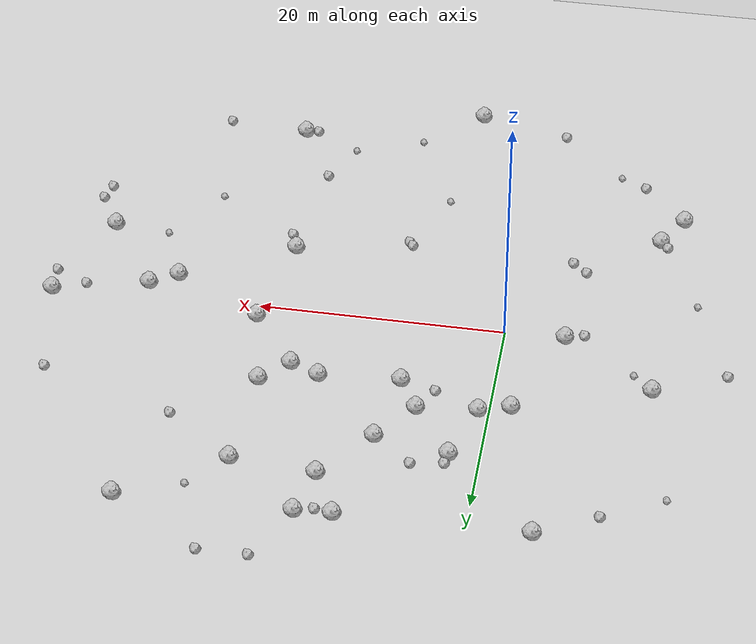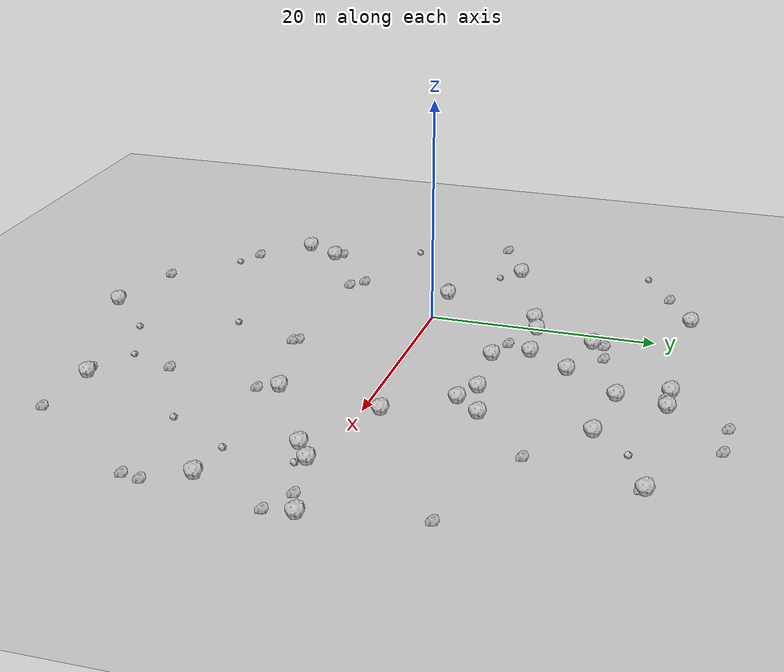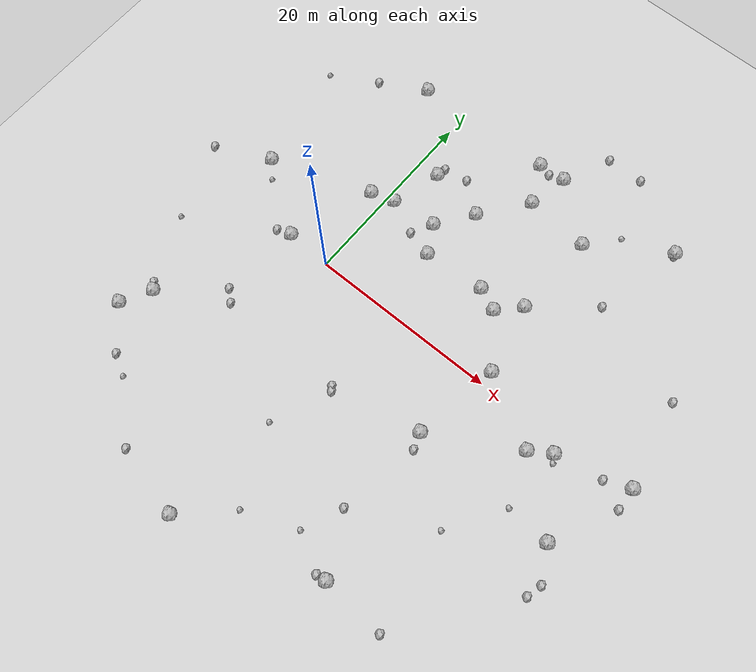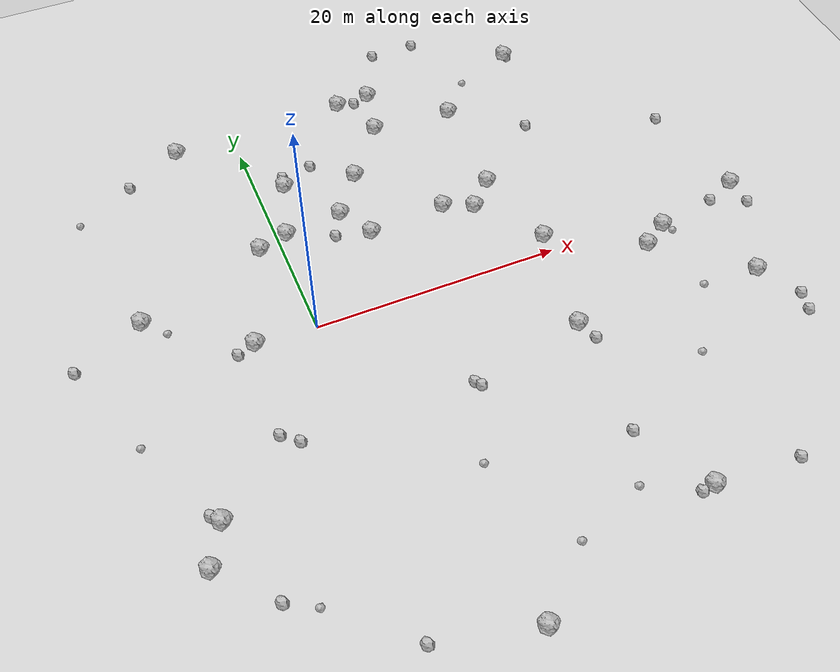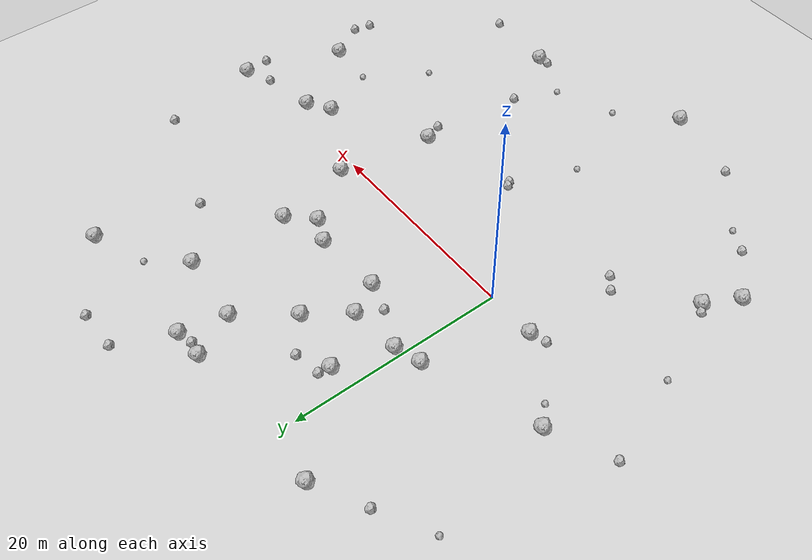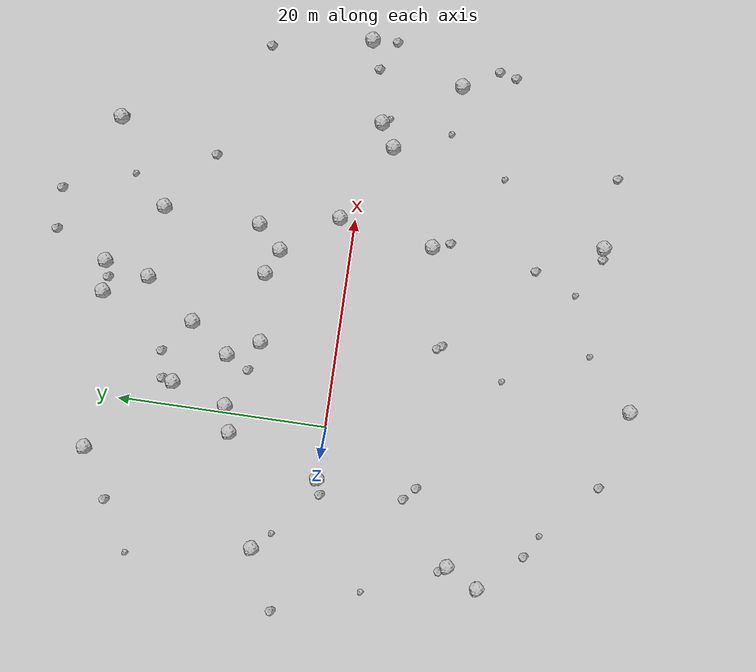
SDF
<sdf version="1.6">
 <world name="default">
  <include><uri>model://custom_ground</uri></include>
  <include><uri>model://sun</uri></include>
  <model name="rock1_0_0">
   <include><uri>model://rock1</uri><pose>18.752457497050067 18.109081399433165 0.5 0 0 0</pose></include>
  </model>
  <model name="rock1_0_1">
   <include><uri>model://rock1</uri><pose>5.660684782589623 10.244629294801733 0.5 0 0 0</pose></include>
  </model>
  <model name="rock1_0_2">
   <include><uri>model://rock1</uri><pose>27.346064810536994 -2.580714548875399 0.5 0 0 0</pose></include>
  </model>
  <model name="rock1_0_3">
   <include><uri>model://rock1</uri><pose>2.3995338080641773 14.98769402513446 0.5 0 0 0</pose></include>
  </model>
  <model name="rock1_0_4">
   <include><uri>model://rock1</uri><pose>12.884090526138614 22.919203178896517 0.5 0 0 0</pose></include>
  </model>
  <model name="rock1_0_5">
   <include><uri>model://rock1</uri><pose>13.81106825147453 7.762618812759619 0.5 0 0 0</pose></include>
  </model>
  <model name="rock1_0_6">
   <include><uri>model://rock1</uri><pose>-11.330809202531917 -13.27816265428374 0.5 0 0 0</pose></include>
  </model>
  <model name="rock1_0_7">
   <include><uri>model://rock1</uri><pose>9.968854779922502 22.771228361815666 0.5 0 0 0</pose></include>
  </model>
  <model name="rock1_0_8">
   <include><uri>model://rock1</uri><pose>34.00520805926403 -8.24698035894636 0.5 0 0 0</pose></include>
  </model>
  <model name="rock1_0_9">
   <include><uri>model://rock1</uri><pose>-4.808277266897855 0.12263634173859472 0.5 0 0 0</pose></include>
  </model>
  <model name="rock1_0_10">
   <include><uri>model://rock1</uri><pose>0.8573502836081275 9.760169233936807 0.5 0 0 0</pose></include>
  </model>
  <model name="rock1_0_11">
   <include><uri>model://rock1</uri><pose>29.517864844027166 -1.1846229876156897 0.5 0 0 0</pose></include>
  </model>
  <model name="rock1_0_12">
   <include><uri>model://rock1</uri><pose>26.597099732939967 23.33574086659278 0.5 0 0 0</pose></include>
  </model>
  <model name="rock1_0_13">
   <include><uri>model://rock1</uri><pose>7.295338230299226 7.289260338678858 0.5 0 0 0</pose></include>
  </model>
  <model name="rock1_0_14">
   <include><uri>model://rock1</uri><pose>-4.913092855298233 22.404779569685495 0.5 0 0 0</pose></include>
  </model>
  <model name="rock1_0_15">
   <include><uri>model://rock1</uri><pose>5.608404033991356 -28.363584563233513 0.5 0 0 0</pose></include>
  </model>
  <model name="rock1_0_16">
   <include><uri>model://rock1</uri><pose>8.319342677354072 13.935034523301056 0.5 0 0 0</pose></include>
  </model>
  <model name="rock1_0_17">
   <include><uri>model://rock1</uri><pose>20.686091982725728 -23.703162137072084 0.5 0 0 0</pose></include>
  </model>
  <model name="rock1_0_18">
   <include><uri>model://rock1</uri><pose>-12.214886643660236 5.344971832599178 0.5 0 0 0</pose></include>
  </model>
  <model name="rock1_0_19">
   <include><uri>model://rock1</uri><pose>16.20149260654884 6.696816177758812 0.5 0 0 0</pose></include>
  </model>
  <model name="rock1_0_20">
   <include><uri>model://rock1</uri><pose>18.49349003040458 -7.594753827377943 0.5 0 0 0</pose></include>
  </model>
  <model name="rock1_0_21">
   <include><uri>model://rock1</uri><pose>-13.02279681591087 -16.37380190348147 0.5 0 0 0</pose></include>
  </model>
  <model name="rock1_0_22">
   <include><uri>model://rock1</uri><pose>11.952118667838732 18.674037649331837 0.5 0 0 0</pose></include>
  </model>
  <model name="rock1_0_23">
   <include><uri>model://rock1</uri><pose>-1.6127313268092465 9.017278482259812 0.5 0 0 0</pose></include>
  </model>
  <model name="rock1_0_24">
   <include><uri>model://rock1</uri><pose>18.36680902269176 8.936638793772659 0.5 0 0 0</pose></include>
  </model>
  <model name="rock1_0_25">
   <include><uri>model://rock1</uri><pose>20.012152720916696 1.4763184421978082 0.5 0 0 0</pose></include>
  </model>
  <model name="rock1_0_26">
   <include><uri>model://rock1</uri><pose>37.164475944113995 0.8007525209864177 0.5 0 0 0</pose></include>
  </model>
  <model name="rock2_0_0">
   <include><uri>model://rock2</uri><pose>27.361978751840724 -24.13830649912704 0.3 0 0 0</pose></include>
  </model>
  <model name="rock2_0_1">
   <include><uri>model://rock2</uri><pose>-9.669564794837363 19.881833282372163 0.3 0 0 0</pose></include>
  </model>
  <model name="rock2_0_2">
   <include><uri>model://rock2</uri><pose>-9.464914220876818 -20.37741408829853 0.3 0 0 0</pose></include>
  </model>
  <model name="rock2_0_3">
   <include><uri>model://rock2</uri><pose>37.288879895963696 -1.589025571869719 0.3 0 0 0</pose></include>
  </model>
  <model name="rock2_0_4">
   <include><uri>model://rock2</uri><pose>-11.963257210416185 -12.594708360741276 0.3 0 0 0</pose></include>
  </model>
  <model name="rock2_0_5">
   <include><uri>model://rock2</uri><pose>-6.347653816981007 -0.3557144465479496 0.3 0 0 0</pose></include>
  </model>
  <model name="rock2_0_6">
   <include><uri>model://rock2</uri><pose>5.117076111496392 16.478688077986682 0.3 0 0 0</pose></include>
  </model>
  <model name="rock2_0_7">
   <include><uri>model://rock2</uri><pose>35.85498623393944 -11.619160606830807 0.3 0 0 0</pose></include>
  </model>
  <model name="rock2_0_8">
   <include><uri>model://rock2</uri><pose>34.52118239784182 -0.2530981746712655 0.3 0 0 0</pose></include>
  </model>
  <model name="rock2_0_9">
   <include><uri>model://rock2</uri><pose>8.969558555489453 -9.444920239821823 0.3 0 0 0</pose></include>
  </model>
  <model name="rock2_0_10">
   <include><uri>model://rock2</uri><pose>11.35086895625988 22.498695985281152 0.3 0 0 0</pose></include>
  </model>
  <model name="rock2_0_11">
   <include><uri>model://rock2</uri><pose>26.67539662545274 23.085591285811653 0.3 0 0 0</pose></include>
  </model>
  <model name="rock2_0_12">
   <include><uri>model://rock2</uri><pose>4.430867134289674 8.087061134515672 0.3 0 0 0</pose></include>
  </model>
  <model name="rock2_0_13">
   <include><uri>model://rock2</uri><pose>19.140681322352982 28.015542194080126 0.3 0 0 0</pose></include>
  </model>
  <model name="rock2_0_14">
   <include><uri>model://rock2</uri><pose>9.289516634810745 -9.872008037392078 0.3 0 0 0</pose></include>
  </model>
  <model name="rock2_0_15">
   <include><uri>model://rock2</uri><pose>17.590376584430466 -17.663156616335336 0.3 0 0 0</pose></include>
  </model>
  <model name="rock2_0_16">
   <include><uri>model://rock2</uri><pose>35.30416883056362 10.18421262710143 0.3 0 0 0</pose></include>
  </model>
  <model name="rock2_0_17">
   <include><uri>model://rock2</uri><pose>-17.965440066148158 2.72283823909261 0.3 0 0 0</pose></include>
  </model>
  <model name="rock2_0_18">
   <include><uri>model://rock2</uri><pose>19.583490845653095 -23.833705341714627 0.3 0 0 0</pose></include>
  </model>
  <model name="rock2_0_19">
   <include><uri>model://rock2</uri><pose>-4.467095472777556 -9.342167957844183 0.3 0 0 0</pose></include>
  </model>
  <model name="rock2_0_20">
   <include><uri>model://rock2</uri><pose>35.47211992447188 -13.239131136765529 0.3 0 0 0</pose></include>
  </model>
  <model name="rock2_0_21">
   <include><uri>model://rock2</uri><pose>15.21829623558105 27.972923388095552 0.3 0 0 0</pose></include>
  </model>
  <model name="rock2_0_22">
   <include><uri>model://rock2</uri><pose>24.301527148861368 13.916257540501938 0.3 0 0 0</pose></include>
  </model>
  <model name="rock2_0_23">
   <include><uri>model://rock2</uri><pose>19.061035414515793 -9.282955280752418 0.3 0 0 0</pose></include>
  </model>
  <model name="rock2_0_24">
   <include><uri>model://rock2</uri><pose>-1.9602860611707413 -26.53083071623595 0.3 0 0 0</pose></include>
  </model>
  <model name="rock2_0_25">
   <include><uri>model://rock2</uri><pose>2.548647129743806 16.077381119668402 0.3 0 0 0</pose></include>
  </model>
  <model name="rock2_0_26">
   <include><uri>model://rock2</uri><pose>-5.664273623775571 -8.268468224304865 0.3 0 0 0</pose></include>
  </model>
  <model name="rock3_0_0">
   <include><uri>model://rock3</uri><pose>-15.023169385542207 -5.538639418323978 0.2 0 0 0</pose></include>
  </model>
  <model name="rock3_0_1">
   <include><uri>model://rock3</uri><pose>-7.337988896797212 -21.638729481809918 0.2 0 0 0</pose></include>
  </model>
  <model name="rock3_0_2">
   <include><uri>model://rock3</uri><pose>6.718085761399944 -16.003510665200203 0.2 0 0 0</pose></include>
  </model>
  <model name="rock3_0_3">
   <include><uri>model://rock3</uri><pose>25.800977751355177 -13.566759244331735 0.2 0 0 0</pose></include>
  </model>
  <model name="rock3_0_4">
   <include><uri>model://rock3</uri><pose>21.43504605918848 21.276341532416133 0.2 0 0 0</pose></include>
  </model>
  <model name="rock3_0_5">
   <include><uri>model://rock3</uri><pose>-14.443491805244248 17.202758879709478 0.2 0 0 0</pose></include>
  </model>
  <model name="rock3_0_6">
   <include><uri>model://rock3</uri><pose>29.97108464417005 -1.9695593620044853 0.2 0 0 0</pose></include>
  </model>
  <model name="rock3_0_7">
   <include><uri>model://rock3</uri><pose>29.35004732208244 -7.942814222220399 0.2 0 0 0</pose></include>
  </model>
  <model name="rock3_0_8">
   <include><uri>model://rock3</uri><pose>15.816688946616239 -21.78765404298688 0.2 0 0 0</pose></include>
  </model>
  <model name="rock3_0_9">
   <include><uri>model://rock3</uri><pose>-10.700994102698171 3.6434669439555663 0.2 0 0 0</pose></include>
  </model>
  <model name="rock3_0_10">
   <include><uri>model://rock3</uri><pose>10.25559903679073 -23.962102729496188 0.2 0 0 0</pose></include>
  </model>
 </world>
</sdf>
